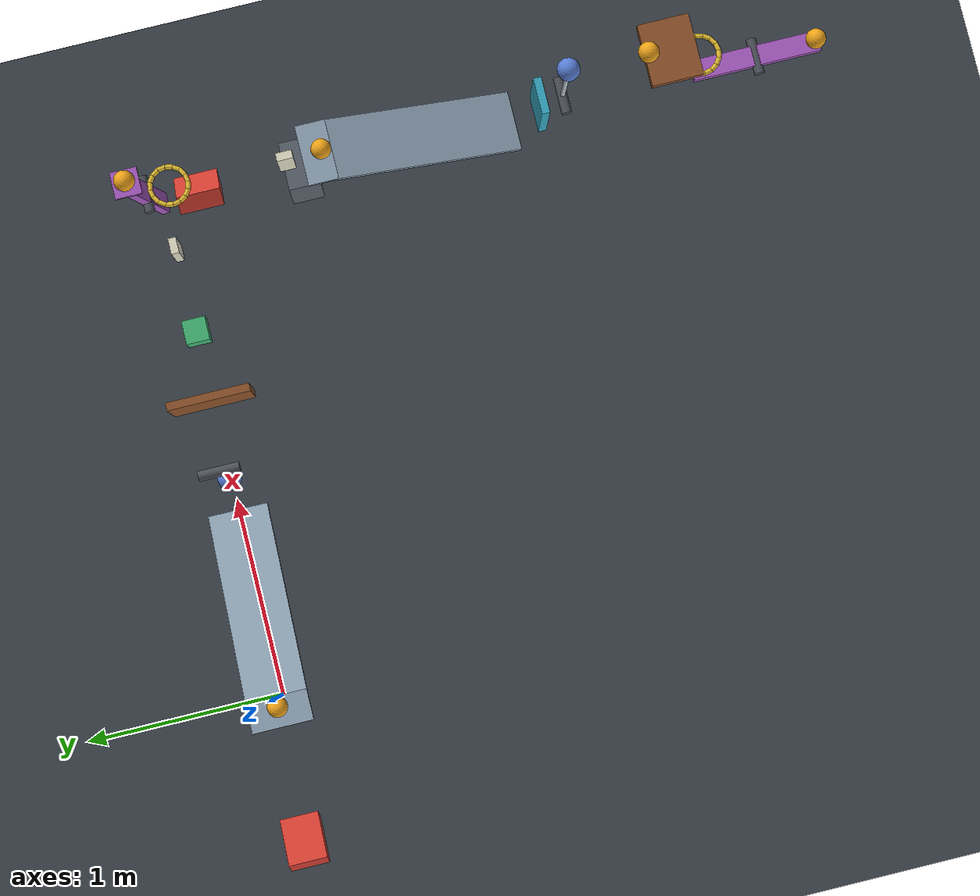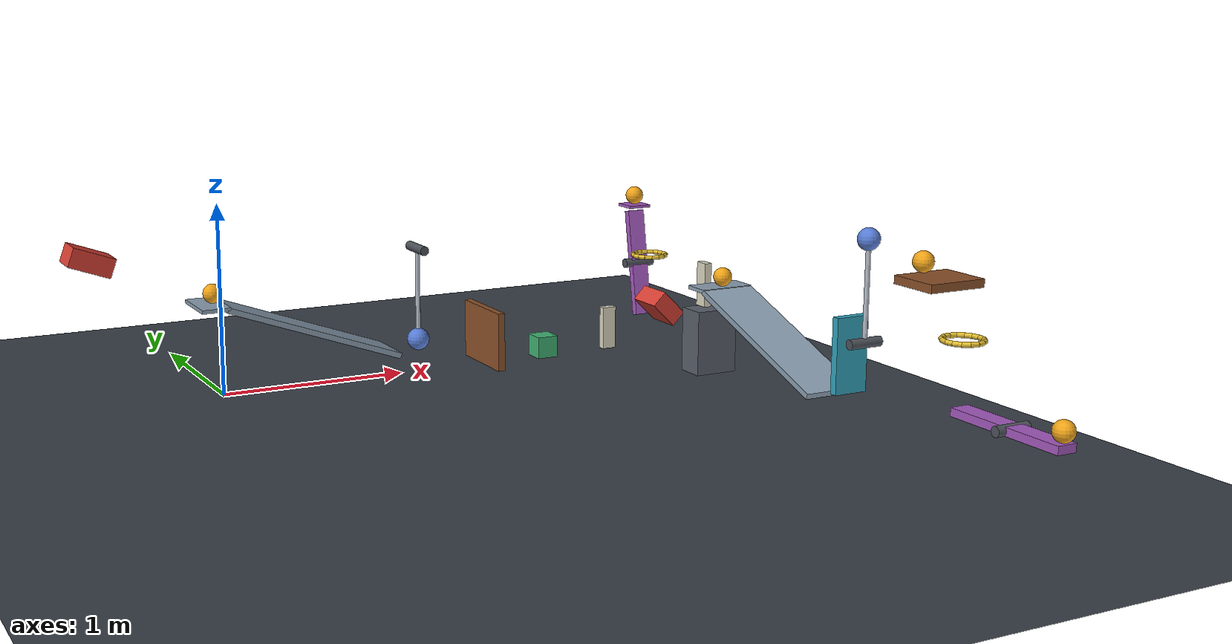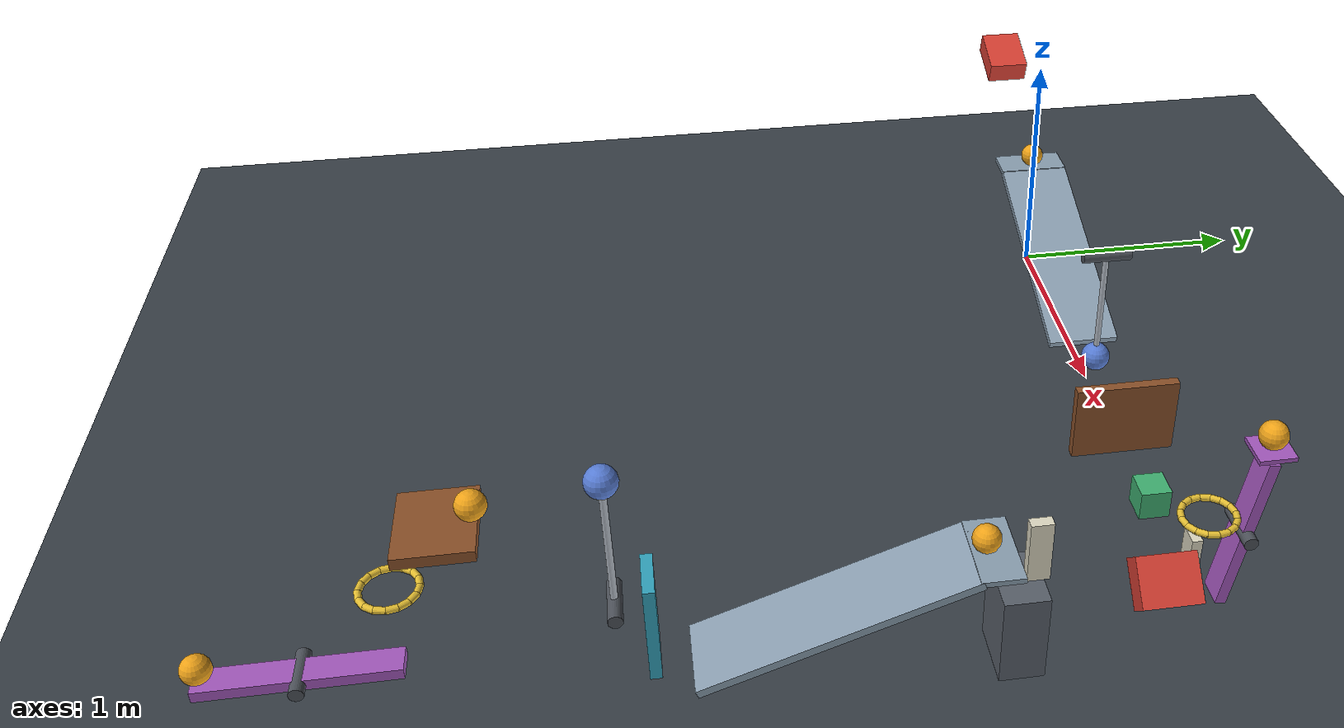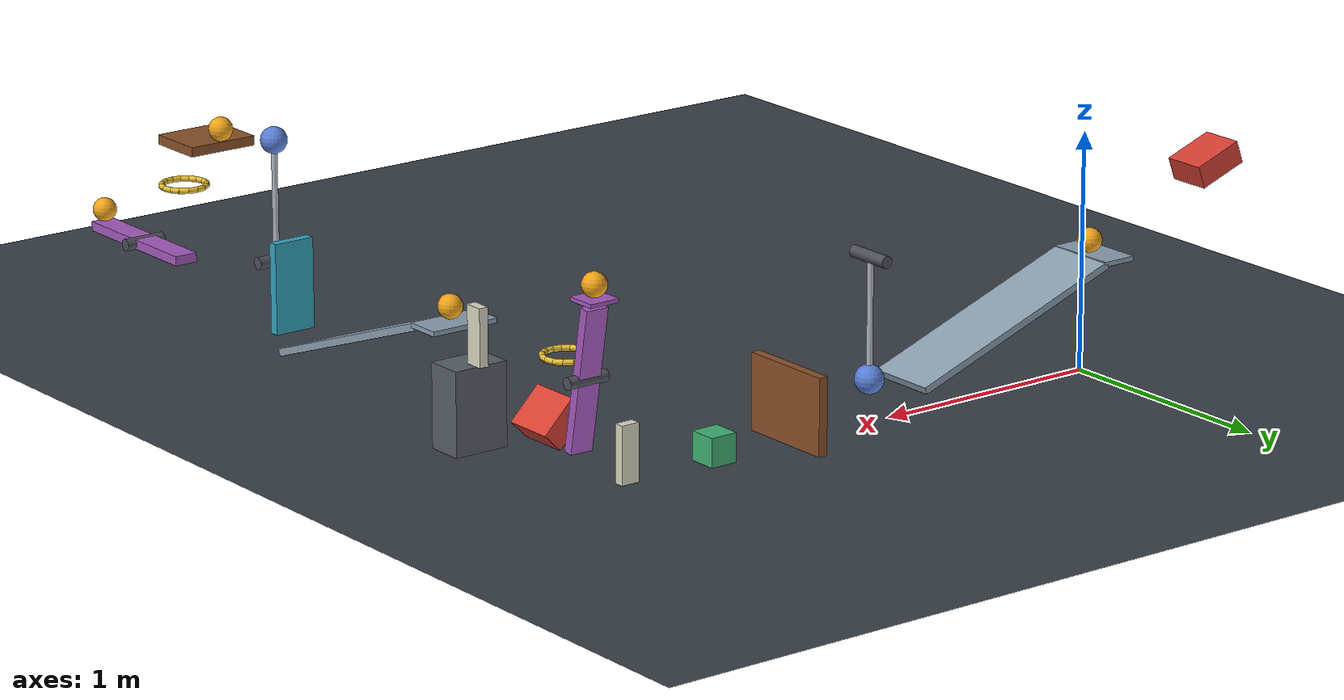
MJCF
<mujoco model="passive_chain_reaction">
  <compiler angle="degree" autolimits="true"/>
  <option timestep="0.002" gravity="0 0 -9.81" integrator="implicitfast" solver="Newton" iterations="100" cone="elliptic"/>
  <size njmax="4000" nconmax="1000"/>
  <visual>
    <global azimuth="135" elevation="-25"/>
    <map znear="0.01" zfar="30"/>
  </visual>

  <!-- solref damping ratio approximates restitution 0.05 for an isolated impact. -->
  <!-- All joints and free bodies begin with zero velocity. -->
  <!-- Cart1's downhill slide allows its 0.20 m spring compression to initiate a 0.50 m stroke. -->

  <worldbody>
    <light name="key_light" pos="0 -2 6" dir="0 0 -1" diffuse="0.8 0.8 0.8"/>
    <light name="fill_light" pos="4 3 4" dir="-1 -1 -1" diffuse="0.5 0.5 0.5"/>
    <camera name="overview" pos="6 -7 5" xyaxes="0.8 0.6 0 -0.3 0.4 0.866"/>

    <geom name="floor" type="plane" pos="0 0 0" size="8 8 0.1" friction="0.68 0.005 0.001" solref="0.008 0.6901" solimp="0.95 0.99 0.001" rgba="0.22 0.25 0.28 1"/>

    <body name="ramp1" pos="0.469846 0 0.321010" euler="0 20 0">
      <geom name="ramp1_surface" type="box" pos="0 0 -0.015" size="0.50 0.15 0.015" friction="0.68 0.005 0.001" solref="0.008 0.6901" solimp="0.95 0.99 0.001" rgba="0.55 0.63 0.70 1"/>
      <geom name="ramp1_start_pad" type="box" pos="-0.557655 0 -0.031630" euler="0 -20 0" size="0.075 0.15 0.01" friction="0.68 0.005 0.001" solref="0.008 0.6901" solimp="0.95 0.99 0.001" rgba="0.55 0.63 0.70 1"/>
    </body>

    <body name="cart1" pos="-0.660197 0 0.767753">
      <joint name="cart1_slide" type="slide" axis="0.939692621 0 -0.342020143" range="0 0.505" damping="0.20" stiffness="18" springref="0.20" solreflimit="0.004 1"/>
      <geom name="cart1_chassis" type="box" euler="0 20 0" size="0.11 0.09 0.05" mass="0.50" friction="0.68 0.005 0.001" solref="0.008 0.6901" solimp="0.95 0.99 0.001" rgba="0.85 0.25 0.20 1"/>
    </body>

    <body name="ball1" pos="-0.040000 0 0.542020">
      <freejoint name="ball1_free"/>
      <geom name="ball1_sphere" type="sphere" size="0.05" mass="0.20" friction="0.68 0.005 0.001" solref="0.008 0.6901" solimp="0.95 0.99 0.001" rgba="0.95 0.65 0.10 1"/>
    </body>

    <body name="pendulum1" pos="1.099693 0 0.680000">
      <joint name="pendulum1_hinge" type="hinge" axis="0 -1 0" range="0 40" damping="0.04" solreflimit="0.004 1"/>
      <geom name="pendulum1_rod" type="capsule" fromto="0 0 0 0 0 -0.455" size="0.012" mass="0.05" friction="0.68 0.005 0.001" solref="0.008 0.6901" solimp="0.95 0.99 0.001" rgba="0.70 0.73 0.77 1"/>
      <geom name="pendulum1_bob" type="sphere" pos="0 0 -0.50" size="0.06" mass="0.30" friction="0.68 0.005 0.001" solref="0.008 0.6901" solimp="0.95 0.99 0.001" rgba="0.35 0.50 0.85 1"/>
    </body>

    <body name="door1" pos="1.501087 0 0">
      <joint name="door1_hinge" type="hinge" axis="0 1 0" range="0 70" damping="0.04" solreflimit="0.004 1"/>
      <geom name="door1_panel" type="box" pos="0 0 0.16" size="0.02 0.21 0.16" mass="0.45" friction="0.68 0.005 0.001" solref="0.008 0.6901" solimp="0.95 0.99 0.001" rgba="0.55 0.32 0.16 1"/>
    </body>

    <body name="block1" pos="1.866887 0 0.06">
      <freejoint name="block1_free"/>
      <geom name="block1_cube" type="box" size="0.06 0.06 0.06" mass="0.35" friction="0.68 0.005 0.001" solref="0.008 0.6901" solimp="0.95 0.99 0.001" rgba="0.25 0.70 0.45 1"/>
    </body>

    <body name="domino1" pos="2.286887 0 0.12">
      <freejoint name="domino1_free"/>
      <geom name="domino1_tile" type="box" size="0.04 0.02 0.12" mass="0.25" friction="0.68 0.005 0.001" solref="0.008 0.6901" solimp="0.95 0.99 0.001" rgba="0.88 0.86 0.77 1"/>
    </body>

    <!-- The steep initial lever places ball2 above its receiving cart. -->
    <!-- Its massless loading tray is horizontal at the start pose. -->
    <body name="lever1" pos="2.516887 0.052094 0.471969" euler="80 0 0">
      <joint name="lever1_hinge" type="hinge" axis="1 0 0" range="0 45" damping="0.04" solreflimit="0.004 1"/>
      <geom name="lever1_beam" type="box" size="0.05 0.30 0.02" mass="0.50" friction="0.68 0.005 0.001" solref="0.008 0.6901" solimp="0.95 0.99 0.001" rgba="0.65 0.35 0.75 1"/>
      <geom name="lever1_loading_tray" type="box" pos="0 0.330189 0.005323" euler="-80 0 0" size="0.065 0.065 0.008" mass="0" friction="0.68 0.005 0.001" solref="0.008 0.6901" solimp="0.95 0.99 0.001" rgba="0.65 0.35 0.75 1"/>
    </body>

    <body name="ball2" pos="2.516887 0.104189 0.856066">
      <freejoint name="ball2_free"/>
      <geom name="ball2_sphere" type="sphere" size="0.05" mass="0.20" friction="0.68 0.005 0.001" solref="0.008 0.6901" solimp="0.95 0.99 0.001" rgba="0.95 0.65 0.10 1"/>
    </body>

    <!-- Capsule centerline radius is chosen for a 0.16 m clear polygonal aperture. -->
    <body name="ring1" pos="2.516887 -0.071000 0.536066">
      <geom name="ring1_segment_00" type="capsule" fromto="0.093806 0 0 0.086666 0.035898 0" size="0.012" friction="0.68 0.005 0.001" solref="0.008 0.6901" solimp="0.95 0.99 0.001" rgba="0.90 0.75 0.20 1"/>
      <geom name="ring1_segment_01" type="capsule" fromto="0.086666 0.035898 0 0.066331 0.066331 0" size="0.012" friction="0.68 0.005 0.001" solref="0.008 0.6901" solimp="0.95 0.99 0.001" rgba="0.90 0.75 0.20 1"/>
      <geom name="ring1_segment_02" type="capsule" fromto="0.066331 0.066331 0 0.035898 0.086666 0" size="0.012" friction="0.68 0.005 0.001" solref="0.008 0.6901" solimp="0.95 0.99 0.001" rgba="0.90 0.75 0.20 1"/>
      <geom name="ring1_segment_03" type="capsule" fromto="0.035898 0.086666 0 0 0.093806 0" size="0.012" friction="0.68 0.005 0.001" solref="0.008 0.6901" solimp="0.95 0.99 0.001" rgba="0.90 0.75 0.20 1"/>
      <geom name="ring1_segment_04" type="capsule" fromto="0 0.093806 0 -0.035898 0.086666 0" size="0.012" friction="0.68 0.005 0.001" solref="0.008 0.6901" solimp="0.95 0.99 0.001" rgba="0.90 0.75 0.20 1"/>
      <geom name="ring1_segment_05" type="capsule" fromto="-0.035898 0.086666 0 -0.066331 0.066331 0" size="0.012" friction="0.68 0.005 0.001" solref="0.008 0.6901" solimp="0.95 0.99 0.001" rgba="0.90 0.75 0.20 1"/>
      <geom name="ring1_segment_06" type="capsule" fromto="-0.066331 0.066331 0 -0.086666 0.035898 0" size="0.012" friction="0.68 0.005 0.001" solref="0.008 0.6901" solimp="0.95 0.99 0.001" rgba="0.90 0.75 0.20 1"/>
      <geom name="ring1_segment_07" type="capsule" fromto="-0.086666 0.035898 0 -0.093806 0 0" size="0.012" friction="0.68 0.005 0.001" solref="0.008 0.6901" solimp="0.95 0.99 0.001" rgba="0.90 0.75 0.20 1"/>
      <geom name="ring1_segment_08" type="capsule" fromto="-0.093806 0 0 -0.086666 -0.035898 0" size="0.012" friction="0.68 0.005 0.001" solref="0.008 0.6901" solimp="0.95 0.99 0.001" rgba="0.90 0.75 0.20 1"/>
      <geom name="ring1_segment_09" type="capsule" fromto="-0.086666 -0.035898 0 -0.066331 -0.066331 0" size="0.012" friction="0.68 0.005 0.001" solref="0.008 0.6901" solimp="0.95 0.99 0.001" rgba="0.90 0.75 0.20 1"/>
      <geom name="ring1_segment_10" type="capsule" fromto="-0.066331 -0.066331 0 -0.035898 -0.086666 0" size="0.012" friction="0.68 0.005 0.001" solref="0.008 0.6901" solimp="0.95 0.99 0.001" rgba="0.90 0.75 0.20 1"/>
      <geom name="ring1_segment_11" type="capsule" fromto="-0.035898 -0.086666 0 0 -0.093806 0" size="0.012" friction="0.68 0.005 0.001" solref="0.008 0.6901" solimp="0.95 0.99 0.001" rgba="0.90 0.75 0.20 1"/>
      <geom name="ring1_segment_12" type="capsule" fromto="0 -0.093806 0 0.035898 -0.086666 0" size="0.012" friction="0.68 0.005 0.001" solref="0.008 0.6901" solimp="0.95 0.99 0.001" rgba="0.90 0.75 0.20 1"/>
      <geom name="ring1_segment_13" type="capsule" fromto="0.035898 -0.086666 0 0.066331 -0.066331 0" size="0.012" friction="0.68 0.005 0.001" solref="0.008 0.6901" solimp="0.95 0.99 0.001" rgba="0.90 0.75 0.20 1"/>
      <geom name="ring1_segment_14" type="capsule" fromto="0.066331 -0.066331 0 0.086666 -0.035898 0" size="0.012" friction="0.68 0.005 0.001" solref="0.008 0.6901" solimp="0.95 0.99 0.001" rgba="0.90 0.75 0.20 1"/>
      <geom name="ring1_segment_15" type="capsule" fromto="0.086666 -0.035898 0 0.093806 0 0" size="0.012" friction="0.68 0.005 0.001" solref="0.008 0.6901" solimp="0.95 0.99 0.001" rgba="0.90 0.75 0.20 1"/>
    </body>

    <!-- An inclined chassis converts the falling ball's impulse into slide motion. -->
    <body name="cart2" pos="2.516887 -0.186355 0.260000">
      <joint name="cart2_slide" type="slide" axis="0 -1 0" range="0 0.405" damping="0.20" solreflimit="0.004 1"/>
      <geom name="cart2_chassis" type="box" euler="0 45 90" size="0.11 0.09 0.05" mass="0.50" friction="0.68 0.005 0.001" solref="0.008 0.6901" solimp="0.95 0.99 0.001" rgba="0.85 0.25 0.20 1"/>
    </body>

    <body name="domino2" pos="2.516887 -0.645644 0.470000">
      <freejoint name="domino2_free"/>
      <geom name="domino2_tile" type="box" size="0.02 0.04 0.12" mass="0.25" friction="0.68 0.005 0.001" solref="0.008 0.6901" solimp="0.95 0.99 0.001" rgba="0.88 0.86 0.77 1"/>
    </body>

    <body name="ramp2" pos="2.516887 -1.335490 0.321010" euler="20 0 0">
      <geom name="ramp2_surface" type="box" pos="0 0 -0.015" size="0.15 0.50 0.015" friction="0.68 0.005 0.001" solref="0.008 0.6901" solimp="0.95 0.99 0.001" rgba="0.55 0.63 0.70 1"/>
      <geom name="ramp2_start_pad" type="box" pos="0 0.557655 -0.031630" euler="-20 0 0" size="0.15 0.075 0.01" friction="0.68 0.005 0.001" solref="0.008 0.6901" solimp="0.95 0.99 0.001" rgba="0.55 0.63 0.70 1"/>
    </body>

    <body name="ball3" pos="2.516887 -0.825644 0.542020">
      <freejoint name="ball3_free"/>
      <geom name="ball3_sphere" type="sphere" size="0.05" mass="0.20" friction="0.68 0.005 0.001" solref="0.008 0.6901" solimp="0.95 0.99 0.001" rgba="0.95 0.65 0.10 1"/>
    </body>

    <body name="flap1" pos="2.516887 -1.925337 0.550000">
      <joint name="flap1_hinge" type="hinge" axis="-1 0 0" range="0 60" damping="0.04" solreflimit="0.004 1"/>
      <geom name="flap1_panel" type="box" pos="0 0 -0.19" size="0.09 0.02 0.19" mass="0.28" friction="0.68 0.005 0.001" solref="0.008 0.6901" solimp="0.95 0.99 0.001" rgba="0.20 0.65 0.75 1"/>
    </body>

    <!-- Pendulum2 begins upright, exactly at rest, and is tipped by flap1. -->
    <body name="pendulum2" pos="2.516887 -2.035337 0.440000">
      <joint name="pendulum2_hinge" type="hinge" axis="1 0 0" range="0 38" damping="0.04" solreflimit="0.004 1"/>
      <geom name="pendulum2_rod" type="capsule" fromto="0 0 0 0 0 0.455" size="0.012" mass="0.05" friction="0.68 0.005 0.001" solref="0.008 0.6901" solimp="0.95 0.99 0.001" rgba="0.70 0.73 0.77 1"/>
      <geom name="pendulum2_bob" type="sphere" pos="0 0 0.50" size="0.055" mass="0.30" friction="0.68 0.005 0.001" solref="0.008 0.6901" solimp="0.95 0.99 0.001" rgba="0.35 0.50 0.85 1"/>
    </body>

    <body name="shelf1" pos="2.516887 -2.534866 0.830000">
      <geom name="shelf1_board" type="box" size="0.15 0.125 0.02" friction="0.68 0.005 0.001" solref="0.008 0.6901" solimp="0.95 0.99 0.001" rgba="0.55 0.32 0.16 1"/>
    </body>

    <body name="ball4" pos="2.516887 -2.424866 0.900000">
      <freejoint name="ball4_free"/>
      <geom name="ball4_sphere" type="sphere" size="0.05" mass="0.20" friction="0.68 0.005 0.001" solref="0.008 0.6901" solimp="0.95 0.99 0.001" rgba="0.95 0.65 0.10 1"/>
    </body>

    <body name="ring2" pos="2.516887 -2.710000 0.600000">
      <geom name="ring2_segment_00" type="capsule" fromto="0.093806 0 0 0.086666 0.035898 0" size="0.012" friction="0.68 0.005 0.001" solref="0.008 0.6901" solimp="0.95 0.99 0.001" rgba="0.90 0.75 0.20 1"/>
      <geom name="ring2_segment_01" type="capsule" fromto="0.086666 0.035898 0 0.066331 0.066331 0" size="0.012" friction="0.68 0.005 0.001" solref="0.008 0.6901" solimp="0.95 0.99 0.001" rgba="0.90 0.75 0.20 1"/>
      <geom name="ring2_segment_02" type="capsule" fromto="0.066331 0.066331 0 0.035898 0.086666 0" size="0.012" friction="0.68 0.005 0.001" solref="0.008 0.6901" solimp="0.95 0.99 0.001" rgba="0.90 0.75 0.20 1"/>
      <geom name="ring2_segment_03" type="capsule" fromto="0.035898 0.086666 0 0 0.093806 0" size="0.012" friction="0.68 0.005 0.001" solref="0.008 0.6901" solimp="0.95 0.99 0.001" rgba="0.90 0.75 0.20 1"/>
      <geom name="ring2_segment_04" type="capsule" fromto="0 0.093806 0 -0.035898 0.086666 0" size="0.012" friction="0.68 0.005 0.001" solref="0.008 0.6901" solimp="0.95 0.99 0.001" rgba="0.90 0.75 0.20 1"/>
      <geom name="ring2_segment_05" type="capsule" fromto="-0.035898 0.086666 0 -0.066331 0.066331 0" size="0.012" friction="0.68 0.005 0.001" solref="0.008 0.6901" solimp="0.95 0.99 0.001" rgba="0.90 0.75 0.20 1"/>
      <geom name="ring2_segment_06" type="capsule" fromto="-0.066331 0.066331 0 -0.086666 0.035898 0" size="0.012" friction="0.68 0.005 0.001" solref="0.008 0.6901" solimp="0.95 0.99 0.001" rgba="0.90 0.75 0.20 1"/>
      <geom name="ring2_segment_07" type="capsule" fromto="-0.086666 0.035898 0 -0.093806 0 0" size="0.012" friction="0.68 0.005 0.001" solref="0.008 0.6901" solimp="0.95 0.99 0.001" rgba="0.90 0.75 0.20 1"/>
      <geom name="ring2_segment_08" type="capsule" fromto="-0.093806 0 0 -0.086666 -0.035898 0" size="0.012" friction="0.68 0.005 0.001" solref="0.008 0.6901" solimp="0.95 0.99 0.001" rgba="0.90 0.75 0.20 1"/>
      <geom name="ring2_segment_09" type="capsule" fromto="-0.086666 -0.035898 0 -0.066331 -0.066331 0" size="0.012" friction="0.68 0.005 0.001" solref="0.008 0.6901" solimp="0.95 0.99 0.001" rgba="0.90 0.75 0.20 1"/>
      <geom name="ring2_segment_10" type="capsule" fromto="-0.066331 -0.066331 0 -0.035898 -0.086666 0" size="0.012" friction="0.68 0.005 0.001" solref="0.008 0.6901" solimp="0.95 0.99 0.001" rgba="0.90 0.75 0.20 1"/>
      <geom name="ring2_segment_11" type="capsule" fromto="-0.035898 -0.086666 0 0 -0.093806 0" size="0.012" friction="0.68 0.005 0.001" solref="0.008 0.6901" solimp="0.95 0.99 0.001" rgba="0.90 0.75 0.20 1"/>
      <geom name="ring2_segment_12" type="capsule" fromto="0 -0.093806 0 0.035898 -0.086666 0" size="0.012" friction="0.68 0.005 0.001" solref="0.008 0.6901" solimp="0.95 0.99 0.001" rgba="0.90 0.75 0.20 1"/>
      <geom name="ring2_segment_13" type="capsule" fromto="0.035898 -0.086666 0 0.066331 -0.066331 0" size="0.012" friction="0.68 0.005 0.001" solref="0.008 0.6901" solimp="0.95 0.99 0.001" rgba="0.90 0.75 0.20 1"/>
      <geom name="ring2_segment_14" type="capsule" fromto="0.066331 -0.066331 0 0.086666 -0.035898 0" size="0.012" friction="0.68 0.005 0.001" solref="0.008 0.6901" solimp="0.95 0.99 0.001" rgba="0.90 0.75 0.20 1"/>
      <geom name="ring2_segment_15" type="capsule" fromto="0.086666 -0.035898 0 0.093806 0 0" size="0.012" friction="0.68 0.005 0.001" solref="0.008 0.6901" solimp="0.95 0.99 0.001" rgba="0.90 0.75 0.20 1"/>
    </body>

    <body name="seesaw1" pos="2.516887 -3.035000 0.280000">
      <joint name="seesaw1_hinge" type="hinge" axis="-1 0 0" range="0 42" damping="0.04" solreflimit="0.004 1"/>
      <geom name="seesaw1_beam" type="box" size="0.05 0.325 0.02" mass="0.55" friction="0.68 0.005 0.001" solref="0.008 0.6901" solimp="0.95 0.99 0.001" rgba="0.65 0.35 0.75 1"/>
    </body>

    <body name="ball5" pos="2.516887 -3.335000 0.350000">
      <freejoint name="ball5_free"/>
      <geom name="ball5_sphere" type="sphere" size="0.05" mass="0.20" friction="0.68 0.005 0.001" solref="0.008 0.6901" solimp="0.95 0.99 0.001" rgba="0.95 0.65 0.10 1"/>
    </body>

    <body name="supports" pos="0 0 0">
      <geom name="supports_domino2_pedestal" type="box" pos="2.516887 -0.705644 0.175" size="0.12 0.08 0.175" friction="0.68 0.005 0.001" solref="0.008 0.6901" solimp="0.95 0.99 0.001" rgba="0.35 0.38 0.42 1"/>
      <geom name="supports_pendulum1_axle" type="cylinder" pos="1.099693 0 0.68" euler="90 0 0" size="0.025 0.10" contype="0" conaffinity="0" rgba="0.30 0.32 0.35 1"/>
      <geom name="supports_lever1_axle" type="cylinder" pos="2.516887 0.052094 0.471969" euler="0 90 0" size="0.025 0.09" contype="0" conaffinity="0" rgba="0.30 0.32 0.35 1"/>
      <geom name="supports_pendulum2_axle" type="cylinder" pos="2.516887 -2.035337 0.44" euler="0 90 0" size="0.025 0.09" contype="0" conaffinity="0" rgba="0.30 0.32 0.35 1"/>
      <geom name="supports_seesaw1_axle" type="cylinder" pos="2.516887 -3.035 0.28" euler="0 90 0" size="0.025 0.09" contype="0" conaffinity="0" rgba="0.30 0.32 0.35 1"/>
    </body>
  </worldbody>

  <keyframe>
    <key name="start"/>
  </keyframe>
</mujoco>
